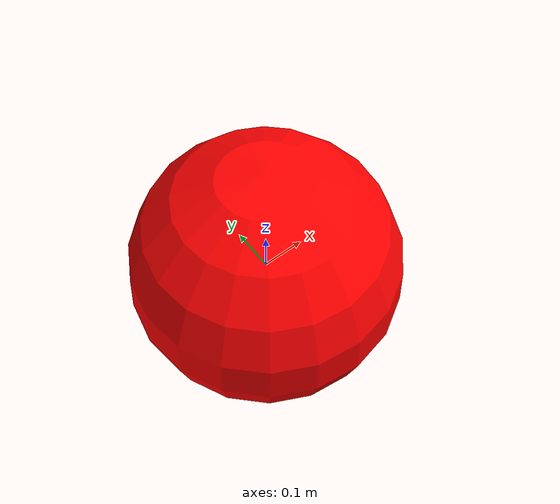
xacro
<?xml version="1.0"?>
<robot xmlns:xacro="http://www.ros.org/wiki/xacro" name="round_bot">

    <xacro:include filename="inertial_macros.xacro"/>

    <!-- Robot properties -->
    <xacro:property name="radius" value="0.3"/>
    <xacro:property name="mass" value="5.0"/>

    <!-- Materials -->
    <material name="red">
        <color rgba="1 0 0 1"/>
    </material>

    <material name="blue">
        <color rgba="0 0 1 1"/>
    </material>

    <!-- Base link (root) -->
    <link name="base_link">
        <!-- Top half (red hemisphere) -->
        <visual>
            <origin xyz="0 0 0"/>
            <geometry>
                <sphere radius="${radius}"/>
            </geometry>
            <material name="red"/>
        </visual>

        <!-- Bottom half (blue hemisphere) -->
        <visual>
            <origin xyz="0 0 0"/>
            <geometry>
                <sphere radius="${radius}"/>
            </geometry>
            <material name="blue"/>
        </visual>

        <!-- Collision (whole sphere) -->
        <collision>
            <origin xyz="0 0 0"/>
            <geometry>
                <sphere radius="${radius}"/>
            </geometry>
        </collision>

        <!-- Inertial (whole sphere) -->
        <xacro:inertial_sphere mass="${mass}" radius="${radius}">
            <origin xyz="0 0 0" rpy="0 0 0"/>
        </xacro:inertial_sphere>
    </link>

</robot>
